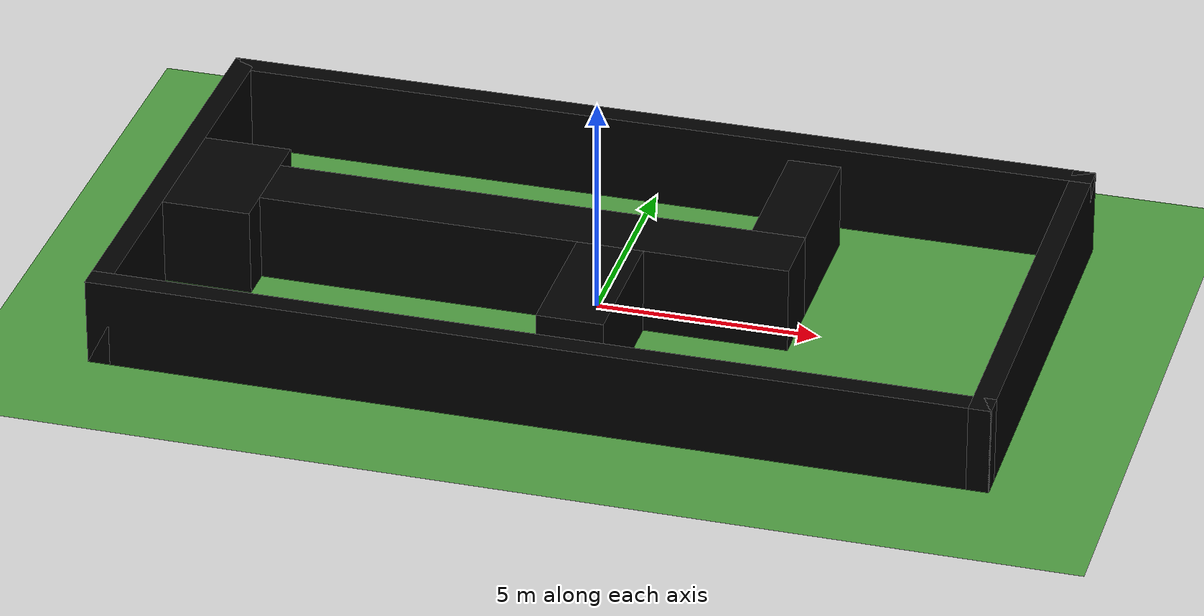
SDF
<sdf version='1.10'>
  <world name='empty'>
    <physics name='1ms' type='ignored'>
      <max_step_size>0.001</max_step_size>
      <real_time_factor>1</real_time_factor>
      <real_time_update_rate>1000</real_time_update_rate>
    </physics>
    <plugin filename="gz-sim-sensors-system" name="gz::sim::systems::Sensors"/>
    <plugin name='gz::sim::systems::Physics' filename='gz-sim-physics-system'/>
    <plugin name='gz::sim::systems::UserCommands' filename='gz-sim-user-commands-system'/>
    <plugin name='gz::sim::systems::SceneBroadcaster' filename='gz-sim-scene-broadcaster-system'/>
    <plugin name='gz::sim::systems::Contact' filename='gz-sim-contact-system'/>
    <gravity>0 0 -9.8000000000000007</gravity>
    <magnetic_field>5.5644999999999998e-06 2.2875799999999999e-05 -4.2388400000000002e-05</magnetic_field>
    <atmosphere type='adiabatic'/>
    <scene>
      <ambient>0.400000006 0.400000006 0.400000006 1</ambient>
      <background>0.699999988 0.699999988 0.699999988 1</background>
      <shadows>true</shadows>
    </scene>
    <!-- Terrain/Grass Floor -->
    <model name='terrain_floor'>
      <static>true</static>
      <link name='terrain_link'>
        <collision name='terrain_collision'>
          <geometry>
            <plane>
              <normal>0 0 1</normal>
              <size>50 50</size>
            </plane>
          </geometry>
        </collision>
        <visual name='terrain_visual'>
          <geometry>
            <plane>
              <normal>0 0 1</normal>
              <size>50 50</size>
            </plane>
          </geometry>
          <material>
            <ambient>0.2 0.5 0.2 1</ambient>
            <diffuse>0.3 0.7 0.3 1</diffuse>
            <script>
              <uri>file://media/materials/scripts/gazebo.material</uri>
              <name>Gazebo/Grass</name>
            </script>
          </material>
        </visual>
      </link>
    </model>

    <!-- Maze Walls -->
    <model name='maze'>
      <static>true</static>
      <pose>0 0 1 0 0 0</pose>
      <link name='walls_link'>

        <!-- Outer Top Wall -->
        <visual name='top_wall_visual'>
          <pose>0 5 0 0 0 0</pose>
          <geometry><box><size>20 0.5 2</size></box></geometry>
          <material><ambient>0 0 0 1</ambient><diffuse>0 0 0 1</diffuse></material>
        </visual>
        <collision name='top_wall_collision'>
          <pose>0 5 0 0 0 0</pose>
          <geometry><box><size>20 0.5 2</size></box></geometry>
        </collision>

        <!-- Outer Bottom Wall -->
        <visual name='bottom_wall_visual'>
          <pose>0 -5 0 0 0 0</pose>
          <geometry><box><size>20 0.5 2</size></box></geometry>
          <material><ambient>0 0 0 1</ambient><diffuse>0 0 0 1</diffuse></material>
        </visual>
        <collision name='bottom_wall_collision'>
          <pose>0 -5 0 0 0 0</pose>
          <geometry><box><size>20 0.5 2</size></box></geometry>
        </collision>

        <!-- Outer Left Wall -->
        <visual name='left_wall_visual'>
          <pose>-9.75 0 0 0 0 0</pose>
          <geometry><box><size>0.5 10.5 2</size></box></geometry>
          <material><ambient>0 0 0 1</ambient><diffuse>0 0 0 1</diffuse></material>
        </visual>
        <collision name='left_wall_collision'>
          <pose>-9.75 0 0 0 0 0</pose>
          <geometry><box><size>0.5 10.5 2</size></box></geometry>
        </collision>

        <!-- Outer Right Wall -->
        <visual name='right_wall_visual'>
          <pose>9.75 0 0 0 0 0</pose>
          <geometry><box><size>0.5 10.5 2</size></box></geometry>
          <material><ambient>0 0 0 1</ambient><diffuse>0 0 0 1</diffuse></material>
        </visual>
        <collision name='right_wall_collision'>
          <pose>9.75 0 0 0 0 0</pose>
          <geometry><box><size>0.5 10.5 2</size></box></geometry>
        </collision>

        <!-- Inner Left Thick Block -->
        <visual name='left_block_visual'>
          <pose>-8.5 0 0 0 0 0</pose>
          <geometry><box><size>2 3 2</size></box></geometry>
          <material><ambient>0 0 0 1</ambient><diffuse>0 0 0 1</diffuse></material>
        </visual>
        <collision name='left_block_collision'>
          <pose>-8.5 0 0 0 0 0</pose>
          <geometry><box><size>2 3 2</size></box></geometry>
        </collision>

        <!-- Inner Long Horizontal Bar -->
        <visual name='horizontal_bar_visual'>
          <pose>-1.5 0 0 0 0 0</pose>
          <geometry><box><size>12 1.5 2</size></box></geometry>
          <material><ambient>0 0 0 1</ambient><diffuse>0 0 0 1</diffuse></material>
        </visual>
        <collision name='horizontal_bar_collision'>
          <pose>-1.5 0 0 0 0 0</pose>
          <geometry><box><size>12 1.5 2</size></box></geometry>
        </collision>

        <!-- Inner Vertical Up Bar -->
        <visual name='up_bar_visual'>
          <pose>3.9 2.375 0 0 0 0</pose>
          <geometry><box><size>1.2 3.25 2</size></box></geometry>
          <material><ambient>0 0 0 1</ambient><diffuse>0 0 0 1</diffuse></material>
        </visual>
        <collision name='up_bar_collision'>
          <pose>3.9 2.375 0 0 0 0</pose>
          <geometry><box><size>1.2 3.25 2</size></box></geometry>
        </collision>

        <!-- Inner Vertical Down Bar -->
        <visual name='down_bar_visual'>
          <pose>0.5 -2.375 0 0 0 0</pose>
          <geometry><box><size>1.5 3.25 2</size></box></geometry>
          <material><ambient>0 0 0 1</ambient><diffuse>0 0 0 1</diffuse></material>
        </visual>
        <collision name='down_bar_collision'>
          <pose>0.5 -2.375 0 0 0 0</pose>
          <geometry><box><size>1.5 3.25 2</size></box></geometry>
        </collision>

      </link>
    </model>
  </world>
</sdf>
